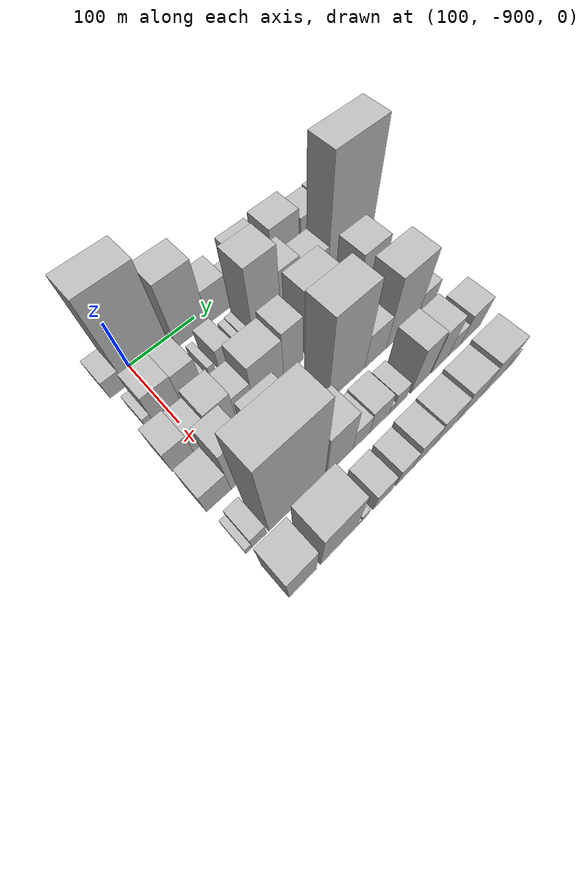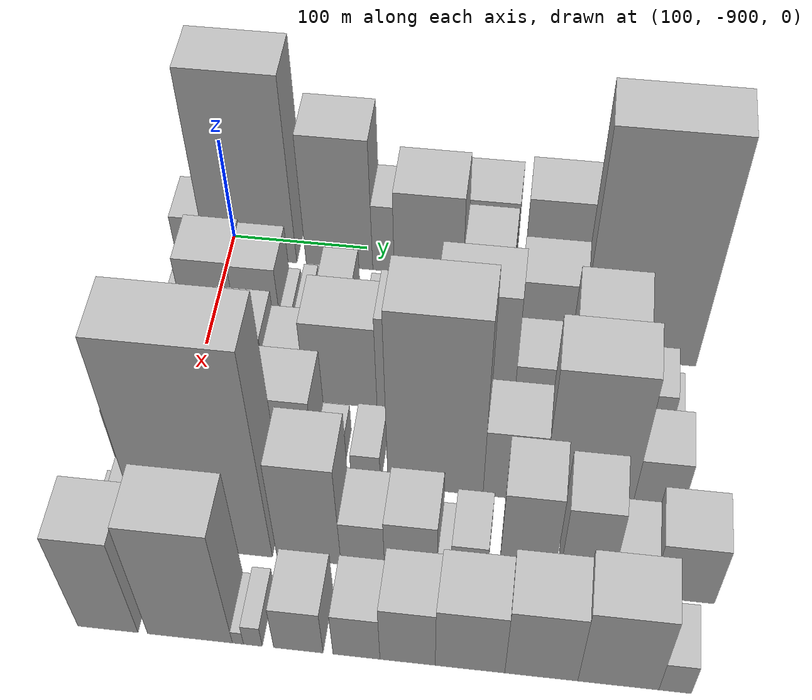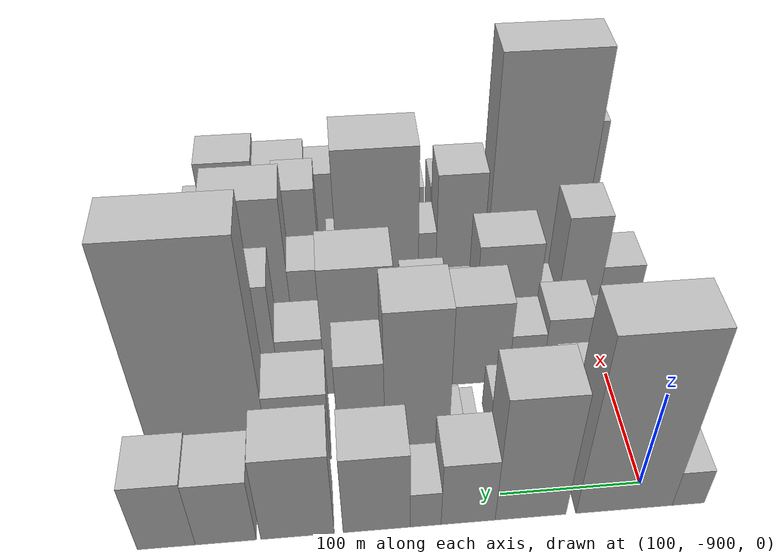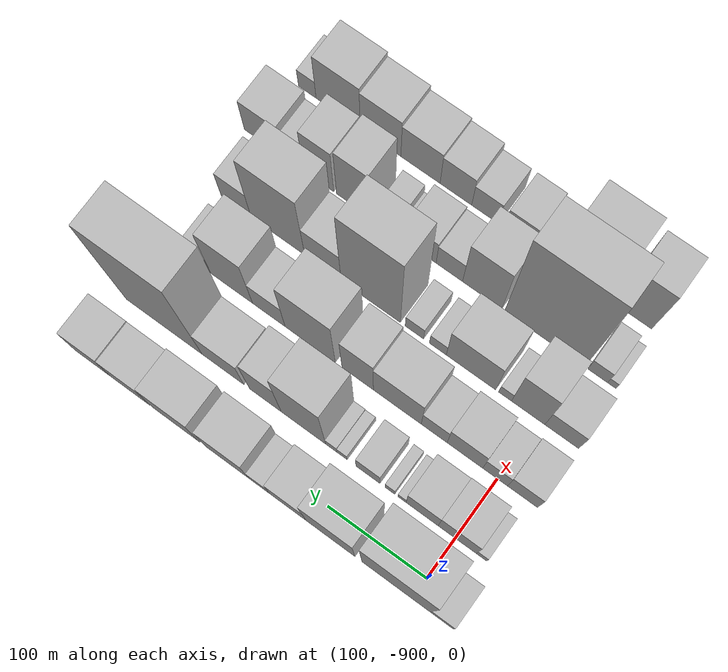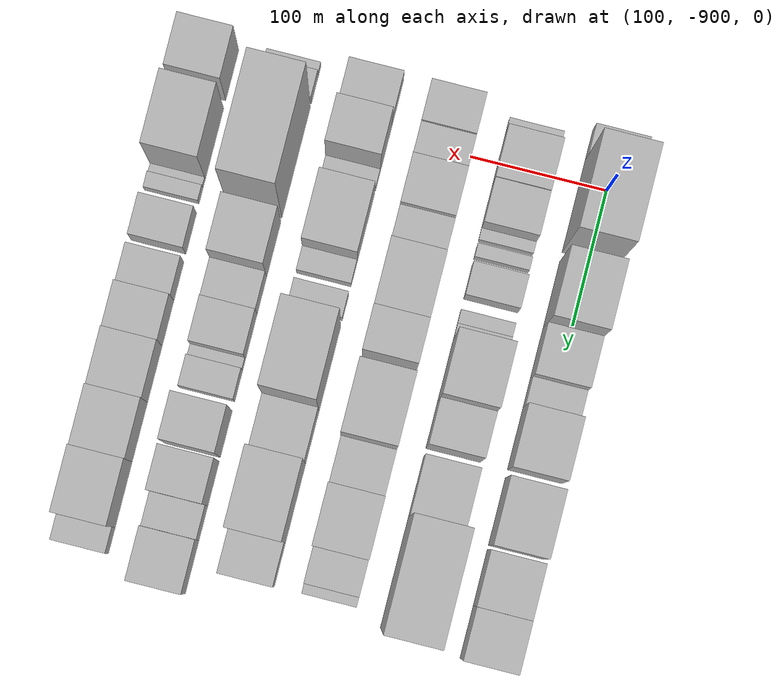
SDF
<sdf version="1.6">
 <world name="default">
  <model name="building_1">
   <static>1</static>
   <pose>100.0000 -928.5805 0 0.000000 0.000000 0.000000</pose>
   <link name="link">
    <pose>0 0 19.50 0 0 0</pose>
    <collision name="collision"><geometry><box><size>40.0000 22.8391 39.0000</size></box></geometry></collision>
    <visual name="visual">
     <cast_shadows>0</cast_shadows>
     <geometry><box><size>40.0000 22.8391 39.0000</size></box></geometry>
     <material>
      <script>
       <uri>model://HANNAS_wall/materials/scripts</uri>
       <uri>model://HANNAS_wall/materials/textures</uri>
       <name>vrc/HANNAS_wall</name>
      </script>
     </material>
    </visual>
   </link>
  </model>
  <model name="building_2">
   <static>1</static>
   <pose>100.0000 -883.2201 0 0.000000 0.000000 0.000000</pose>
   <link name="link">
    <pose>0 0 91.50 0 0 0</pose>
    <collision name="collision"><geometry><box><size>40.0000 67.8817 183.0000</size></box></geometry></collision>
    <visual name="visual">
     <cast_shadows>0</cast_shadows>
     <geometry><box><size>40.0000 67.8817 183.0000</size></box></geometry>
     <material>
      <script>
       <uri>model://HANNAS_wall/materials/scripts</uri>
       <uri>model://HANNAS_wall/materials/textures</uri>
       <name>vrc/HANNAS_wall</name>
      </script>
     </material>
    </visual>
   </link>
  </model>
  <model name="building_3">
   <static>1</static>
   <pose>100.0000 -817.6146 0 0.000000 0.000000 0.000000</pose>
   <link name="link">
    <pose>0 0 66.00 0 0 0</pose>
    <collision name="collision"><geometry><box><size>40.0000 49.3291 132.0000</size></box></geometry></collision>
    <visual name="visual">
     <cast_shadows>0</cast_shadows>
     <geometry><box><size>40.0000 49.3291 132.0000</size></box></geometry>
     <material>
      <script>
       <uri>model://HANNAS_wall/materials/scripts</uri>
       <uri>model://HANNAS_wall/materials/textures</uri>
       <name>vrc/HANNAS_wall</name>
      </script>
     </material>
    </visual>
   </link>
  </model>
  <model name="building_4">
   <static>1</static>
   <pose>100.0000 -774.3493 0 0.000000 0.000000 0.000000</pose>
   <link name="link">
    <pose>0 0 34.50 0 0 0</pose>
    <collision name="collision"><geometry><box><size>40.0000 37.2015 69.0000</size></box></geometry></collision>
    <visual name="visual">
     <cast_shadows>0</cast_shadows>
     <geometry><box><size>40.0000 37.2015 69.0000</size></box></geometry>
     <material>
      <script>
       <uri>model://HANNAS_wall/materials/scripts</uri>
       <uri>model://HANNAS_wall/materials/textures</uri>
       <name>vrc/HANNAS_wall</name>
      </script>
     </material>
    </visual>
   </link>
  </model>
  <model name="building_5">
   <static>1</static>
   <pose>100.0000 -745.1743 0 0.000000 0.000000 0.000000</pose>
   <link name="link">
    <pose>0 0 19.50 0 0 0</pose>
    <collision name="collision"><geometry><box><size>40.0000 21.1486 39.0000</size></box></geometry></collision>
    <visual name="visual">
     <cast_shadows>0</cast_shadows>
     <geometry><box><size>40.0000 21.1486 39.0000</size></box></geometry>
     <material>
      <script>
       <uri>model://HANNAS_wall/materials/scripts</uri>
       <uri>model://HANNAS_wall/materials/textures</uri>
       <name>vrc/HANNAS_wall</name>
      </script>
     </material>
    </visual>
   </link>
  </model>
  <model name="building_6">
   <static>1</static>
   <pose>100.0000 -711.8089 0 0.000000 0.000000 0.000000</pose>
   <link name="link">
    <pose>0 0 42.00 0 0 0</pose>
    <collision name="collision"><geometry><box><size>40.0000 45.5821 84.0000</size></box></geometry></collision>
    <visual name="visual">
     <cast_shadows>0</cast_shadows>
     <geometry><box><size>40.0000 45.5821 84.0000</size></box></geometry>
     <material>
      <script>
       <uri>model://HANNAS_wall/materials/scripts</uri>
       <uri>model://HANNAS_wall/materials/textures</uri>
       <name>vrc/HANNAS_wall</name>
      </script>
     </material>
    </visual>
   </link>
  </model>
  <model name="building_7">
   <static>1</static>
   <pose>100.0000 -658.3033 0 0.000000 0.000000 0.000000</pose>
   <link name="link">
    <pose>0 0 45.00 0 0 0</pose>
    <collision name="collision"><geometry><box><size>40.0000 49.4292 90.0000</size></box></geometry></collision>
    <visual name="visual">
     <cast_shadows>0</cast_shadows>
     <geometry><box><size>40.0000 49.4292 90.0000</size></box></geometry>
     <material>
      <script>
       <uri>model://HANNAS_wall/materials/scripts</uri>
       <uri>model://HANNAS_wall/materials/textures</uri>
       <name>vrc/HANNAS_wall</name>
      </script>
     </material>
    </visual>
   </link>
  </model>
  <model name="building_8">
   <static>1</static>
   <pose>100.0000 -610.2642 0 0.000000 0.000000 0.000000</pose>
   <link name="link">
    <pose>0 0 34.50 0 0 0</pose>
    <collision name="collision"><geometry><box><size>40.0000 40.6489 69.0000</size></box></geometry></collision>
    <visual name="visual">
     <cast_shadows>0</cast_shadows>
     <geometry><box><size>40.0000 40.6489 69.0000</size></box></geometry>
     <material>
      <script>
       <uri>model://HANNAS_wall/materials/scripts</uri>
       <uri>model://HANNAS_wall/materials/textures</uri>
       <name>vrc/HANNAS_wall</name>
      </script>
     </material>
    </visual>
   </link>
  </model>
  <model name="building_9">
   <static>1</static>
   <pose>100.0000 -570.7548 0 0.000000 0.000000 0.000000</pose>
   <link name="link">
    <pose>0 0 36.00 0 0 0</pose>
    <collision name="collision"><geometry><box><size>40.0000 38.3700 72.0000</size></box></geometry></collision>
    <visual name="visual">
     <cast_shadows>0</cast_shadows>
     <geometry><box><size>40.0000 38.3700 72.0000</size></box></geometry>
     <material>
      <script>
       <uri>model://HANNAS_wall/materials/scripts</uri>
       <uri>model://HANNAS_wall/materials/textures</uri>
       <name>vrc/HANNAS_wall</name>
      </script>
     </material>
    </visual>
   </link>
  </model>
  <model name="building_51">
   <static>1</static>
   <pose>160.0000 -925.8647 0 0.000000 0.000000 0.000000</pose>
   <link name="link">
    <pose>0 0 12.00 0 0 0</pose>
    <collision name="collision"><geometry><box><size>40.0000 10.2706 24.0000</size></box></geometry></collision>
    <visual name="visual">
     <cast_shadows>0</cast_shadows>
     <geometry><box><size>40.0000 10.2706 24.0000</size></box></geometry>
     <material>
      <script>
       <uri>model://HANNAS_wall/materials/scripts</uri>
       <uri>model://HANNAS_wall/materials/textures</uri>
       <name>vrc/HANNAS_wall</name>
      </script>
     </material>
    </visual>
   </link>
  </model>
  <model name="building_52">
   <static>1</static>
   <pose>160.0000 -901.6727 0 0.000000 0.000000 0.000000</pose>
   <link name="link">
    <pose>0 0 33.00 0 0 0</pose>
    <collision name="collision"><geometry><box><size>40.0000 38.1135 66.0000</size></box></geometry></collision>
    <visual name="visual">
     <cast_shadows>0</cast_shadows>
     <geometry><box><size>40.0000 38.1135 66.0000</size></box></geometry>
     <material>
      <script>
       <uri>model://HANNAS_wall/materials/scripts</uri>
       <uri>model://HANNAS_wall/materials/textures</uri>
       <name>vrc/HANNAS_wall</name>
      </script>
     </material>
    </visual>
   </link>
  </model>
  <model name="building_53">
   <static>1</static>
   <pose>160.0000 -866.5047 0 0.000000 0.000000 0.000000</pose>
   <link name="link">
    <pose>0 0 31.50 0 0 0</pose>
    <collision name="collision"><geometry><box><size>40.0000 32.2225 63.0000</size></box></geometry></collision>
    <visual name="visual">
     <cast_shadows>0</cast_shadows>
     <geometry><box><size>40.0000 32.2225 63.0000</size></box></geometry>
     <material>
      <script>
       <uri>model://HANNAS_wall/materials/scripts</uri>
       <uri>model://HANNAS_wall/materials/textures</uri>
       <name>vrc/HANNAS_wall</name>
      </script>
     </material>
    </visual>
   </link>
  </model>
  <model name="building_54">
   <static>1</static>
   <pose>160.0000 -846.1203 0 0.000000 0.000000 0.000000</pose>
   <link name="link">
    <pose>0 0 9.00 0 0 0</pose>
    <collision name="collision"><geometry><box><size>40.0000 8.5462 18.0000</size></box></geometry></collision>
    <visual name="visual">
     <cast_shadows>0</cast_shadows>
     <geometry><box><size>40.0000 8.5462 18.0000</size></box></geometry>
     <material>
      <script>
       <uri>model://HANNAS_wall/materials/scripts</uri>
       <uri>model://HANNAS_wall/materials/textures</uri>
       <name>vrc/HANNAS_wall</name>
      </script>
     </material>
    </visual>
   </link>
  </model>
  <model name="building_55">
   <static>1</static>
   <pose>160.0000 -833.8532 0 0.000000 0.000000 0.000000</pose>
   <link name="link">
    <pose>0 0 12.00 0 0 0</pose>
    <collision name="collision"><geometry><box><size>40.0000 9.9879 24.0000</size></box></geometry></collision>
    <visual name="visual">
     <cast_shadows>0</cast_shadows>
     <geometry><box><size>40.0000 9.9879 24.0000</size></box></geometry>
     <material>
      <script>
       <uri>model://HANNAS_wall/materials/scripts</uri>
       <uri>model://HANNAS_wall/materials/textures</uri>
       <name>vrc/HANNAS_wall</name>
      </script>
     </material>
    </visual>
   </link>
  </model>
  <model name="building_56">
   <static>1</static>
   <pose>160.0000 -811.6302 0 0.000000 0.000000 0.000000</pose>
   <link name="link">
    <pose>0 0 22.50 0 0 0</pose>
    <collision name="collision"><geometry><box><size>40.0000 24.4582 45.0000</size></box></geometry></collision>
    <visual name="visual">
     <cast_shadows>0</cast_shadows>
     <geometry><box><size>40.0000 24.4582 45.0000</size></box></geometry>
     <material>
      <script>
       <uri>model://HANNAS_wall/materials/scripts</uri>
       <uri>model://HANNAS_wall/materials/textures</uri>
       <name>vrc/HANNAS_wall</name>
      </script>
     </material>
    </visual>
   </link>
  </model>
  <model name="building_57">
   <static>1</static>
   <pose>160.0000 -785.2358 0 0.000000 0.000000 0.000000</pose>
   <link name="link">
    <pose>0 0 10.50 0 0 0</pose>
    <collision name="collision"><geometry><box><size>40.0000 10.3304 21.0000</size></box></geometry></collision>
    <visual name="visual">
     <cast_shadows>0</cast_shadows>
     <geometry><box><size>40.0000 10.3304 21.0000</size></box></geometry>
     <material>
      <script>
       <uri>model://HANNAS_wall/materials/scripts</uri>
       <uri>model://HANNAS_wall/materials/textures</uri>
       <name>vrc/HANNAS_wall</name>
      </script>
     </material>
    </visual>
   </link>
  </model>
  <model name="building_58">
   <static>1</static>
   <pose>160.0000 -774.2130 0 0.000000 0.000000 0.000000</pose>
   <link name="link">
    <pose>0 0 12.00 0 0 0</pose>
    <collision name="collision"><geometry><box><size>40.0000 11.7152 24.0000</size></box></geometry></collision>
    <visual name="visual">
     <cast_shadows>0</cast_shadows>
     <geometry><box><size>40.0000 11.7152 24.0000</size></box></geometry>
     <material>
      <script>
       <uri>model://HANNAS_wall/materials/scripts</uri>
       <uri>model://HANNAS_wall/materials/textures</uri>
       <name>vrc/HANNAS_wall</name>
      </script>
     </material>
    </visual>
   </link>
  </model>
  <model name="building_59">
   <static>1</static>
   <pose>160.0000 -745.3790 0 0.000000 0.000000 0.000000</pose>
   <link name="link">
    <pose>0 0 75.00 0 0 0</pose>
    <collision name="collision"><geometry><box><size>40.0000 45.9529 150.0000</size></box></geometry></collision>
    <visual name="visual">
     <cast_shadows>0</cast_shadows>
     <geometry><box><size>40.0000 45.9529 150.0000</size></box></geometry>
     <material>
      <script>
       <uri>model://HANNAS_wall/materials/scripts</uri>
       <uri>model://HANNAS_wall/materials/textures</uri>
       <name>vrc/HANNAS_wall</name>
      </script>
     </material>
    </visual>
   </link>
  </model>
  <model name="building_60">
   <static>1</static>
   <pose>160.0000 -705.8684 0 0.000000 0.000000 0.000000</pose>
   <link name="link">
    <pose>0 0 51.00 0 0 0</pose>
    <collision name="collision"><geometry><box><size>40.0000 33.0682 102.0000</size></box></geometry></collision>
    <visual name="visual">
     <cast_shadows>0</cast_shadows>
     <geometry><box><size>40.0000 33.0682 102.0000</size></box></geometry>
     <material>
      <script>
       <uri>model://HANNAS_wall/materials/scripts</uri>
       <uri>model://HANNAS_wall/materials/textures</uri>
       <name>vrc/HANNAS_wall</name>
      </script>
     </material>
    </visual>
   </link>
  </model>
  <model name="building_61">
   <static>1</static>
   <pose>160.0000 -661.4337 0 0.000000 0.000000 0.000000</pose>
   <link name="link">
    <pose>0 0 37.50 0 0 0</pose>
    <collision name="collision"><geometry><box><size>40.0000 43.8013 75.0000</size></box></geometry></collision>
    <visual name="visual">
     <cast_shadows>0</cast_shadows>
     <geometry><box><size>40.0000 43.8013 75.0000</size></box></geometry>
     <material>
      <script>
       <uri>model://HANNAS_wall/materials/scripts</uri>
       <uri>model://HANNAS_wall/materials/textures</uri>
       <name>vrc/HANNAS_wall</name>
      </script>
     </material>
    </visual>
   </link>
  </model>
  <model name="building_62">
   <static>1</static>
   <pose>160.0000 -598.9825 0 0.000000 0.000000 0.000000</pose>
   <link name="link">
    <pose>0 0 111.00 0 0 0</pose>
    <collision name="collision"><geometry><box><size>40.0000 81.1011 222.0000</size></box></geometry></collision>
    <visual name="visual">
     <cast_shadows>0</cast_shadows>
     <geometry><box><size>40.0000 81.1011 222.0000</size></box></geometry>
     <material>
      <script>
       <uri>model://HANNAS_wall/materials/scripts</uri>
       <uri>model://HANNAS_wall/materials/textures</uri>
       <name>vrc/HANNAS_wall</name>
      </script>
     </material>
    </visual>
   </link>
  </model>
  <model name="building_105">
   <static>1</static>
   <pose>220.0000 -924.9800 0 0.000000 0.000000 0.000000</pose>
   <link name="link">
    <pose>0 0 27.00 0 0 0</pose>
    <collision name="collision"><geometry><box><size>40.0000 30.0400 54.0000</size></box></geometry></collision>
    <visual name="visual">
     <cast_shadows>0</cast_shadows>
     <geometry><box><size>40.0000 30.0400 54.0000</size></box></geometry>
     <material>
      <script>
       <uri>model://HANNAS_wall/materials/scripts</uri>
       <uri>model://HANNAS_wall/materials/textures</uri>
       <name>vrc/HANNAS_wall</name>
      </script>
     </material>
    </visual>
   </link>
  </model>
  <model name="building_106">
   <static>1</static>
   <pose>220.0000 -897.5039 0 0.000000 0.000000 0.000000</pose>
   <link name="link">
    <pose>0 0 24.00 0 0 0</pose>
    <collision name="collision"><geometry><box><size>40.0000 24.9122 48.0000</size></box></geometry></collision>
    <visual name="visual">
     <cast_shadows>0</cast_shadows>
     <geometry><box><size>40.0000 24.9122 48.0000</size></box></geometry>
     <material>
      <script>
       <uri>model://HANNAS_wall/materials/scripts</uri>
       <uri>model://HANNAS_wall/materials/textures</uri>
       <name>vrc/HANNAS_wall</name>
      </script>
     </material>
    </visual>
   </link>
  </model>
  <model name="building_107">
   <static>1</static>
   <pose>220.0000 -867.0587 0 0.000000 0.000000 0.000000</pose>
   <link name="link">
    <pose>0 0 33.00 0 0 0</pose>
    <collision name="collision"><geometry><box><size>40.0000 35.9781 66.0000</size></box></geometry></collision>
    <visual name="visual">
     <cast_shadows>0</cast_shadows>
     <geometry><box><size>40.0000 35.9781 66.0000</size></box></geometry>
     <material>
      <script>
       <uri>model://HANNAS_wall/materials/scripts</uri>
       <uri>model://HANNAS_wall/materials/textures</uri>
       <name>vrc/HANNAS_wall</name>
      </script>
     </material>
    </visual>
   </link>
  </model>
  <model name="building_108">
   <static>1</static>
   <pose>220.0000 -835.8420 0 0.000000 0.000000 0.000000</pose>
   <link name="link">
    <pose>0 0 25.50 0 0 0</pose>
    <collision name="collision"><geometry><box><size>40.0000 26.4553 51.0000</size></box></geometry></collision>
    <visual name="visual">
     <cast_shadows>0</cast_shadows>
     <geometry><box><size>40.0000 26.4553 51.0000</size></box></geometry>
     <material>
      <script>
       <uri>model://HANNAS_wall/materials/scripts</uri>
       <uri>model://HANNAS_wall/materials/textures</uri>
       <name>vrc/HANNAS_wall</name>
      </script>
     </material>
    </visual>
   </link>
  </model>
  <model name="building_109">
   <static>1</static>
   <pose>220.0000 -798.0347 0 0.000000 0.000000 0.000000</pose>
   <link name="link">
    <pose>0 0 43.50 0 0 0</pose>
    <collision name="collision"><geometry><box><size>40.0000 49.1594 87.0000</size></box></geometry></collision>
    <visual name="visual">
     <cast_shadows>0</cast_shadows>
     <geometry><box><size>40.0000 49.1594 87.0000</size></box></geometry>
     <material>
      <script>
       <uri>model://HANNAS_wall/materials/scripts</uri>
       <uri>model://HANNAS_wall/materials/textures</uri>
       <name>vrc/HANNAS_wall</name>
      </script>
     </material>
    </visual>
   </link>
  </model>
  <model name="building_110">
   <static>1</static>
   <pose>220.0000 -757.2284 0 0.000000 0.000000 0.000000</pose>
   <link name="link">
    <pose>0 0 49.50 0 0 0</pose>
    <collision name="collision"><geometry><box><size>40.0000 32.4532 99.0000</size></box></geometry></collision>
    <visual name="visual">
     <cast_shadows>0</cast_shadows>
     <geometry><box><size>40.0000 32.4532 99.0000</size></box></geometry>
     <material>
      <script>
       <uri>model://HANNAS_wall/materials/scripts</uri>
       <uri>model://HANNAS_wall/materials/textures</uri>
       <name>vrc/HANNAS_wall</name>
      </script>
     </material>
    </visual>
   </link>
  </model>
  <model name="building_111">
   <static>1</static>
   <pose>220.0000 -707.7387 0 0.000000 0.000000 0.000000</pose>
   <link name="link">
    <pose>0 0 66.00 0 0 0</pose>
    <collision name="collision"><geometry><box><size>40.0000 52.5260 132.0000</size></box></geometry></collision>
    <visual name="visual">
     <cast_shadows>0</cast_shadows>
     <geometry><box><size>40.0000 52.5260 132.0000</size></box></geometry>
     <material>
      <script>
       <uri>model://HANNAS_wall/materials/scripts</uri>
       <uri>model://HANNAS_wall/materials/textures</uri>
       <name>vrc/HANNAS_wall</name>
      </script>
     </material>
    </visual>
   </link>
  </model>
  <model name="building_112">
   <static>1</static>
   <pose>220.0000 -664.3202 0 0.000000 0.000000 0.000000</pose>
   <link name="link">
    <pose>0 0 31.50 0 0 0</pose>
    <collision name="collision"><geometry><box><size>40.0000 34.3111 63.0000</size></box></geometry></collision>
    <visual name="visual">
     <cast_shadows>0</cast_shadows>
     <geometry><box><size>40.0000 34.3111 63.0000</size></box></geometry>
     <material>
      <script>
       <uri>model://HANNAS_wall/materials/scripts</uri>
       <uri>model://HANNAS_wall/materials/textures</uri>
       <name>vrc/HANNAS_wall</name>
      </script>
     </material>
    </visual>
   </link>
  </model>
  <model name="building_113">
   <static>1</static>
   <pose>220.0000 -624.8797 0 0.000000 0.000000 0.000000</pose>
   <link name="link">
    <pose>0 0 60.00 0 0 0</pose>
    <collision name="collision"><geometry><box><size>40.0000 44.5698 120.0000</size></box></geometry></collision>
    <visual name="visual">
     <cast_shadows>0</cast_shadows>
     <geometry><box><size>40.0000 44.5698 120.0000</size></box></geometry>
     <material>
      <script>
       <uri>model://HANNAS_wall/materials/scripts</uri>
       <uri>model://HANNAS_wall/materials/textures</uri>
       <name>vrc/HANNAS_wall</name>
      </script>
     </material>
    </visual>
   </link>
  </model>
  <model name="building_114">
   <static>1</static>
   <pose>220.0000 -589.1715 0 0.000000 0.000000 0.000000</pose>
   <link name="link">
    <pose>0 0 22.50 0 0 0</pose>
    <collision name="collision"><geometry><box><size>40.0000 26.8466 45.0000</size></box></geometry></collision>
    <visual name="visual">
     <cast_shadows>0</cast_shadows>
     <geometry><box><size>40.0000 26.8466 45.0000</size></box></geometry>
     <material>
      <script>
       <uri>model://HANNAS_wall/materials/scripts</uri>
       <uri>model://HANNAS_wall/materials/textures</uri>
       <name>vrc/HANNAS_wall</name>
      </script>
     </material>
    </visual>
   </link>
  </model>
  <model name="building_115">
   <static>1</static>
   <pose>220.0000 -571.9809 0 0.000000 0.000000 0.000000</pose>
   <link name="link">
    <pose>0 0 9.00 0 0 0</pose>
    <collision name="collision"><geometry><box><size>40.0000 7.5346 18.0000</size></box></geometry></collision>
    <visual name="visual">
     <cast_shadows>0</cast_shadows>
     <geometry><box><size>40.0000 7.5346 18.0000</size></box></geometry>
     <material>
      <script>
       <uri>model://HANNAS_wall/materials/scripts</uri>
       <uri>model://HANNAS_wall/materials/textures</uri>
       <name>vrc/HANNAS_wall</name>
      </script>
     </material>
    </visual>
   </link>
  </model>
  <model name="building_162">
   <static>1</static>
   <pose>280.0000 -922.9904 0 0.000000 0.000000 0.000000</pose>
   <link name="link">
    <pose>0 0 28.50 0 0 0</pose>
    <collision name="collision"><geometry><box><size>40.0000 34.0192 57.0000</size></box></geometry></collision>
    <visual name="visual">
     <cast_shadows>0</cast_shadows>
     <geometry><box><size>40.0000 34.0192 57.0000</size></box></geometry>
     <material>
      <script>
       <uri>model://HANNAS_wall/materials/scripts</uri>
       <uri>model://HANNAS_wall/materials/textures</uri>
       <name>vrc/HANNAS_wall</name>
      </script>
     </material>
    </visual>
   </link>
  </model>
  <model name="building_163">
   <static>1</static>
   <pose>280.0000 -889.1143 0 0.000000 0.000000 0.000000</pose>
   <link name="link">
    <pose>0 0 55.50 0 0 0</pose>
    <collision name="collision"><geometry><box><size>40.0000 33.7330 111.0000</size></box></geometry></collision>
    <visual name="visual">
     <cast_shadows>0</cast_shadows>
     <geometry><box><size>40.0000 33.7330 111.0000</size></box></geometry>
     <material>
      <script>
       <uri>model://HANNAS_wall/materials/scripts</uri>
       <uri>model://HANNAS_wall/materials/textures</uri>
       <name>vrc/HANNAS_wall</name>
      </script>
     </material>
    </visual>
   </link>
  </model>
  <model name="building_164">
   <static>1</static>
   <pose>280.0000 -865.7031 0 0.000000 0.000000 0.000000</pose>
   <link name="link">
    <pose>0 0 13.50 0 0 0</pose>
    <collision name="collision"><geometry><box><size>40.0000 13.0894 27.0000</size></box></geometry></collision>
    <visual name="visual">
     <cast_shadows>0</cast_shadows>
     <geometry><box><size>40.0000 13.0894 27.0000</size></box></geometry>
     <material>
      <script>
       <uri>model://HANNAS_wall/materials/scripts</uri>
       <uri>model://HANNAS_wall/materials/textures</uri>
       <name>vrc/HANNAS_wall</name>
      </script>
     </material>
    </visual>
   </link>
  </model>
  <model name="building_165">
   <static>1</static>
   <pose>280.0000 -830.9069 0 0.000000 0.000000 0.000000</pose>
   <link name="link">
    <pose>0 0 43.50 0 0 0</pose>
    <collision name="collision"><geometry><box><size>40.0000 50.5030 87.0000</size></box></geometry></collision>
    <visual name="visual">
     <cast_shadows>0</cast_shadows>
     <geometry><box><size>40.0000 50.5030 87.0000</size></box></geometry>
     <material>
      <script>
       <uri>model://HANNAS_wall/materials/scripts</uri>
       <uri>model://HANNAS_wall/materials/textures</uri>
       <name>vrc/HANNAS_wall</name>
      </script>
     </material>
    </visual>
   </link>
  </model>
  <model name="building_166">
   <static>1</static>
   <pose>280.0000 -796.9113 0 0.000000 0.000000 0.000000</pose>
   <link name="link">
    <pose>0 0 15.00 0 0 0</pose>
    <collision name="collision"><geometry><box><size>40.0000 17.4881 30.0000</size></box></geometry></collision>
    <visual name="visual">
     <cast_shadows>0</cast_shadows>
     <geometry><box><size>40.0000 17.4881 30.0000</size></box></geometry>
     <material>
      <script>
       <uri>model://HANNAS_wall/materials/scripts</uri>
       <uri>model://HANNAS_wall/materials/textures</uri>
       <name>vrc/HANNAS_wall</name>
      </script>
     </material>
    </visual>
   </link>
  </model>
  <model name="building_167">
   <static>1</static>
   <pose>280.0000 -772.6051 0 0.000000 0.000000 0.000000</pose>
   <link name="link">
    <pose>0 0 16.50 0 0 0</pose>
    <collision name="collision"><geometry><box><size>40.0000 19.1244 33.0000</size></box></geometry></collision>
    <visual name="visual">
     <cast_shadows>0</cast_shadows>
     <geometry><box><size>40.0000 19.1244 33.0000</size></box></geometry>
     <material>
      <script>
       <uri>model://HANNAS_wall/materials/scripts</uri>
       <uri>model://HANNAS_wall/materials/textures</uri>
       <name>vrc/HANNAS_wall</name>
      </script>
     </material>
    </visual>
   </link>
  </model>
  <model name="building_168">
   <static>1</static>
   <pose>280.0000 -727.0051 0 0.000000 0.000000 0.000000</pose>
   <link name="link">
    <pose>0 0 93.00 0 0 0</pose>
    <collision name="collision"><geometry><box><size>40.0000 62.0757 186.0000</size></box></geometry></collision>
    <visual name="visual">
     <cast_shadows>0</cast_shadows>
     <geometry><box><size>40.0000 62.0757 186.0000</size></box></geometry>
     <material>
      <script>
       <uri>model://HANNAS_wall/materials/scripts</uri>
       <uri>model://HANNAS_wall/materials/textures</uri>
       <name>vrc/HANNAS_wall</name>
      </script>
     </material>
    </visual>
   </link>
  </model>
  <model name="building_169">
   <static>1</static>
   <pose>280.0000 -676.6794 0 0.000000 0.000000 0.000000</pose>
   <link name="link">
    <pose>0 0 37.50 0 0 0</pose>
    <collision name="collision"><geometry><box><size>40.0000 38.5756 75.0000</size></box></geometry></collision>
    <visual name="visual">
     <cast_shadows>0</cast_shadows>
     <geometry><box><size>40.0000 38.5756 75.0000</size></box></geometry>
     <material>
      <script>
       <uri>model://HANNAS_wall/materials/scripts</uri>
       <uri>model://HANNAS_wall/materials/textures</uri>
       <name>vrc/HANNAS_wall</name>
      </script>
     </material>
    </visual>
   </link>
  </model>
  <model name="building_170">
   <static>1</static>
   <pose>280.0000 -628.6742 0 0.000000 0.000000 0.000000</pose>
   <link name="link">
    <pose>0 0 73.50 0 0 0</pose>
    <collision name="collision"><geometry><box><size>40.0000 57.4349 147.0000</size></box></geometry></collision>
    <visual name="visual">
     <cast_shadows>0</cast_shadows>
     <geometry><box><size>40.0000 57.4349 147.0000</size></box></geometry>
     <material>
      <script>
       <uri>model://HANNAS_wall/materials/scripts</uri>
       <uri>model://HANNAS_wall/materials/textures</uri>
       <name>vrc/HANNAS_wall</name>
      </script>
     </material>
    </visual>
   </link>
  </model>
  <model name="building_171">
   <static>1</static>
   <pose>280.0000 -583.9410 0 0.000000 0.000000 0.000000</pose>
   <link name="link">
    <pose>0 0 30.00 0 0 0</pose>
    <collision name="collision"><geometry><box><size>40.0000 32.0313 60.0000</size></box></geometry></collision>
    <visual name="visual">
     <cast_shadows>0</cast_shadows>
     <geometry><box><size>40.0000 32.0313 60.0000</size></box></geometry>
     <material>
      <script>
       <uri>model://HANNAS_wall/materials/scripts</uri>
       <uri>model://HANNAS_wall/materials/textures</uri>
       <name>vrc/HANNAS_wall</name>
      </script>
     </material>
    </visual>
   </link>
  </model>
  <model name="building_216">
   <static>1</static>
   <pose>340.0000 -932.7652 0 0.000000 0.000000 0.000000</pose>
   <link name="link">
    <pose>0 0 9.00 0 0 0</pose>
    <collision name="collision"><geometry><box><size>40.0000 8.4695 18.0000</size></box></geometry></collision>
    <visual name="visual">
     <cast_shadows>0</cast_shadows>
     <geometry><box><size>40.0000 8.4695 18.0000</size></box></geometry>
     <material>
      <script>
       <uri>model://HANNAS_wall/materials/scripts</uri>
       <uri>model://HANNAS_wall/materials/textures</uri>
       <name>vrc/HANNAS_wall</name>
      </script>
     </material>
    </visual>
   </link>
  </model>
  <model name="building_217">
   <static>1</static>
   <pose>340.0000 -918.5170 0 0.000000 0.000000 0.000000</pose>
   <link name="link">
    <pose>0 0 18.00 0 0 0</pose>
    <collision name="collision"><geometry><box><size>40.0000 20.0269 36.0000</size></box></geometry></collision>
    <visual name="visual">
     <cast_shadows>0</cast_shadows>
     <geometry><box><size>40.0000 20.0269 36.0000</size></box></geometry>
     <material>
      <script>
       <uri>model://HANNAS_wall/materials/scripts</uri>
       <uri>model://HANNAS_wall/materials/textures</uri>
       <name>vrc/HANNAS_wall</name>
      </script>
     </material>
    </visual>
   </link>
  </model>
  <model name="building_218">
   <static>1</static>
   <pose>340.0000 -864.5751 0 0.000000 0.000000 0.000000</pose>
   <link name="link">
    <pose>0 0 109.50 0 0 0</pose>
    <collision name="collision"><geometry><box><size>40.0000 81.8570 219.0000</size></box></geometry></collision>
    <visual name="visual">
     <cast_shadows>0</cast_shadows>
     <geometry><box><size>40.0000 81.8570 219.0000</size></box></geometry>
     <material>
      <script>
       <uri>model://HANNAS_wall/materials/scripts</uri>
       <uri>model://HANNAS_wall/materials/textures</uri>
       <name>vrc/HANNAS_wall</name>
      </script>
     </material>
    </visual>
   </link>
  </model>
  <model name="building_219">
   <static>1</static>
   <pose>340.0000 -800.3147 0 0.000000 0.000000 0.000000</pose>
   <link name="link">
    <pose>0 0 55.50 0 0 0</pose>
    <collision name="collision"><geometry><box><size>40.0000 40.6637 111.0000</size></box></geometry></collision>
    <visual name="visual">
     <cast_shadows>0</cast_shadows>
     <geometry><box><size>40.0000 40.6637 111.0000</size></box></geometry>
     <material>
      <script>
       <uri>model://HANNAS_wall/materials/scripts</uri>
       <uri>model://HANNAS_wall/materials/textures</uri>
       <name>vrc/HANNAS_wall</name>
      </script>
     </material>
    </visual>
   </link>
  </model>
  <model name="building_220">
   <static>1</static>
   <pose>340.0000 -766.1860 0 0.000000 0.000000 0.000000</pose>
   <link name="link">
    <pose>0 0 25.50 0 0 0</pose>
    <collision name="collision"><geometry><box><size>40.0000 27.5938 51.0000</size></box></geometry></collision>
    <visual name="visual">
     <cast_shadows>0</cast_shadows>
     <geometry><box><size>40.0000 27.5938 51.0000</size></box></geometry>
     <material>
      <script>
       <uri>model://HANNAS_wall/materials/scripts</uri>
       <uri>model://HANNAS_wall/materials/textures</uri>
       <name>vrc/HANNAS_wall</name>
      </script>
     </material>
    </visual>
   </link>
  </model>
  <model name="building_221">
   <static>1</static>
   <pose>340.0000 -735.8946 0 0.000000 0.000000 0.000000</pose>
   <link name="link">
    <pose>0 0 28.50 0 0 0</pose>
    <collision name="collision"><geometry><box><size>40.0000 32.9891 57.0000</size></box></geometry></collision>
    <visual name="visual">
     <cast_shadows>0</cast_shadows>
     <geometry><box><size>40.0000 32.9891 57.0000</size></box></geometry>
     <material>
      <script>
       <uri>model://HANNAS_wall/materials/scripts</uri>
       <uri>model://HANNAS_wall/materials/textures</uri>
       <name>vrc/HANNAS_wall</name>
      </script>
     </material>
    </visual>
   </link>
  </model>
  <model name="building_222">
   <static>1</static>
   <pose>340.0000 -715.0918 0 0.000000 0.000000 0.000000</pose>
   <link name="link">
    <pose>0 0 10.50 0 0 0</pose>
    <collision name="collision"><geometry><box><size>40.0000 8.6166 21.0000</size></box></geometry></collision>
    <visual name="visual">
     <cast_shadows>0</cast_shadows>
     <geometry><box><size>40.0000 8.6166 21.0000</size></box></geometry>
     <material>
      <script>
       <uri>model://HANNAS_wall/materials/scripts</uri>
       <uri>model://HANNAS_wall/materials/textures</uri>
       <name>vrc/HANNAS_wall</name>
      </script>
     </material>
    </visual>
   </link>
  </model>
  <model name="building_223">
   <static>1</static>
   <pose>340.0000 -699.4274 0 0.000000 0.000000 0.000000</pose>
   <link name="link">
    <pose>0 0 19.50 0 0 0</pose>
    <collision name="collision"><geometry><box><size>40.0000 22.7121 39.0000</size></box></geometry></collision>
    <visual name="visual">
     <cast_shadows>0</cast_shadows>
     <geometry><box><size>40.0000 22.7121 39.0000</size></box></geometry>
     <material>
      <script>
       <uri>model://HANNAS_wall/materials/scripts</uri>
       <uri>model://HANNAS_wall/materials/textures</uri>
       <name>vrc/HANNAS_wall</name>
      </script>
     </material>
    </visual>
   </link>
  </model>
  <model name="building_224">
   <static>1</static>
   <pose>340.0000 -664.0584 0 0.000000 0.000000 0.000000</pose>
   <link name="link">
    <pose>0 0 52.50 0 0 0</pose>
    <collision name="collision"><geometry><box><size>40.0000 34.0257 105.0000</size></box></geometry></collision>
    <visual name="visual">
     <cast_shadows>0</cast_shadows>
     <geometry><box><size>40.0000 34.0257 105.0000</size></box></geometry>
     <material>
      <script>
       <uri>model://HANNAS_wall/materials/scripts</uri>
       <uri>model://HANNAS_wall/materials/textures</uri>
       <name>vrc/HANNAS_wall</name>
      </script>
     </material>
    </visual>
   </link>
  </model>
  <model name="building_225">
   <static>1</static>
   <pose>340.0000 -627.7861 0 0.000000 0.000000 0.000000</pose>
   <link name="link">
    <pose>0 0 48.00 0 0 0</pose>
    <collision name="collision"><geometry><box><size>40.0000 32.5188 96.0000</size></box></geometry></collision>
    <visual name="visual">
     <cast_shadows>0</cast_shadows>
     <geometry><box><size>40.0000 32.5188 96.0000</size></box></geometry>
     <material>
      <script>
       <uri>model://HANNAS_wall/materials/scripts</uri>
       <uri>model://HANNAS_wall/materials/textures</uri>
       <name>vrc/HANNAS_wall</name>
      </script>
     </material>
    </visual>
   </link>
  </model>
  <model name="building_226">
   <static>1</static>
   <pose>340.0000 -599.0649 0 0.000000 0.000000 0.000000</pose>
   <link name="link">
    <pose>0 0 24.00 0 0 0</pose>
    <collision name="collision"><geometry><box><size>40.0000 24.9237 48.0000</size></box></geometry></collision>
    <visual name="visual">
     <cast_shadows>0</cast_shadows>
     <geometry><box><size>40.0000 24.9237 48.0000</size></box></geometry>
     <material>
      <script>
       <uri>model://HANNAS_wall/materials/scripts</uri>
       <uri>model://HANNAS_wall/materials/textures</uri>
       <name>vrc/HANNAS_wall</name>
      </script>
     </material>
    </visual>
   </link>
  </model>
  <model name="building_227">
   <static>1</static>
   <pose>340.0000 -566.9868 0 0.000000 0.000000 0.000000</pose>
   <link name="link">
    <pose>0 0 33.00 0 0 0</pose>
    <collision name="collision"><geometry><box><size>40.0000 39.2325 66.0000</size></box></geometry></collision>
    <visual name="visual">
     <cast_shadows>0</cast_shadows>
     <geometry><box><size>40.0000 39.2325 66.0000</size></box></geometry>
     <material>
      <script>
       <uri>model://HANNAS_wall/materials/scripts</uri>
       <uri>model://HANNAS_wall/materials/textures</uri>
       <name>vrc/HANNAS_wall</name>
      </script>
     </material>
    </visual>
   </link>
  </model>
  <model name="building_274">
   <static>1</static>
   <pose>400.0000 -914.3231 0 0.000000 0.000000 0.000000</pose>
   <link name="link">
    <pose>0 0 55.50 0 0 0</pose>
    <collision name="collision"><geometry><box><size>40.0000 37.3539 111.0000</size></box></geometry></collision>
    <visual name="visual">
     <cast_shadows>0</cast_shadows>
     <geometry><box><size>40.0000 37.3539 111.0000</size></box></geometry>
     <material>
      <script>
       <uri>model://HANNAS_wall/materials/scripts</uri>
       <uri>model://HANNAS_wall/materials/textures</uri>
       <name>vrc/HANNAS_wall</name>
      </script>
     </material>
    </visual>
   </link>
  </model>
  <model name="building_275">
   <static>1</static>
   <pose>400.0000 -863.4669 0 0.000000 0.000000 0.000000</pose>
   <link name="link">
    <pose>0 0 66.00 0 0 0</pose>
    <collision name="collision"><geometry><box><size>40.0000 52.3585 132.0000</size></box></geometry></collision>
    <visual name="visual">
     <cast_shadows>0</cast_shadows>
     <geometry><box><size>40.0000 52.3585 132.0000</size></box></geometry>
     <material>
      <script>
       <uri>model://HANNAS_wall/materials/scripts</uri>
       <uri>model://HANNAS_wall/materials/textures</uri>
       <name>vrc/HANNAS_wall</name>
      </script>
     </material>
    </visual>
   </link>
  </model>
  <model name="building_276">
   <static>1</static>
   <pose>400.0000 -833.8877 0 0.000000 0.000000 0.000000</pose>
   <link name="link">
    <pose>0 0 7.50 0 0 0</pose>
    <collision name="collision"><geometry><box><size>40.0000 6.7997 15.0000</size></box></geometry></collision>
    <visual name="visual">
     <cast_shadows>0</cast_shadows>
     <geometry><box><size>40.0000 6.7997 15.0000</size></box></geometry>
     <material>
      <script>
       <uri>model://HANNAS_wall/materials/scripts</uri>
       <uri>model://HANNAS_wall/materials/textures</uri>
       <name>vrc/HANNAS_wall</name>
      </script>
     </material>
    </visual>
   </link>
  </model>
  <model name="building_277">
   <static>1</static>
   <pose>400.0000 -824.7146 0 0.000000 0.000000 0.000000</pose>
   <link name="link">
    <pose>0 0 12.00 0 0 0</pose>
    <collision name="collision"><geometry><box><size>40.0000 11.5465 24.0000</size></box></geometry></collision>
    <visual name="visual">
     <cast_shadows>0</cast_shadows>
     <geometry><box><size>40.0000 11.5465 24.0000</size></box></geometry>
     <material>
      <script>
       <uri>model://HANNAS_wall/materials/scripts</uri>
       <uri>model://HANNAS_wall/materials/textures</uri>
       <name>vrc/HANNAS_wall</name>
      </script>
     </material>
    </visual>
   </link>
  </model>
  <model name="building_278">
   <static>1</static>
   <pose>400.0000 -796.8330 0 0.000000 0.000000 0.000000</pose>
   <link name="link">
    <pose>0 0 25.50 0 0 0</pose>
    <collision name="collision"><geometry><box><size>40.0000 30.2169 51.0000</size></box></geometry></collision>
    <visual name="visual">
     <cast_shadows>0</cast_shadows>
     <geometry><box><size>40.0000 30.2169 51.0000</size></box></geometry>
     <material>
      <script>
       <uri>model://HANNAS_wall/materials/scripts</uri>
       <uri>model://HANNAS_wall/materials/textures</uri>
       <name>vrc/HANNAS_wall</name>
      </script>
     </material>
    </visual>
   </link>
  </model>
  <model name="building_279">
   <static>1</static>
   <pose>400.0000 -761.4822 0 0.000000 0.000000 0.000000</pose>
   <link name="link">
    <pose>0 0 25.50 0 0 0</pose>
    <collision name="collision"><geometry><box><size>40.0000 28.4846 51.0000</size></box></geometry></collision>
    <visual name="visual">
     <cast_shadows>0</cast_shadows>
     <geometry><box><size>40.0000 28.4846 51.0000</size></box></geometry>
     <material>
      <script>
       <uri>model://HANNAS_wall/materials/scripts</uri>
       <uri>model://HANNAS_wall/materials/textures</uri>
       <name>vrc/HANNAS_wall</name>
      </script>
     </material>
    </visual>
   </link>
  </model>
  <model name="building_280">
   <static>1</static>
   <pose>400.0000 -730.5452 0 0.000000 0.000000 0.000000</pose>
   <link name="link">
    <pose>0 0 33.00 0 0 0</pose>
    <collision name="collision"><geometry><box><size>40.0000 33.3896 66.0000</size></box></geometry></collision>
    <visual name="visual">
     <cast_shadows>0</cast_shadows>
     <geometry><box><size>40.0000 33.3896 66.0000</size></box></geometry>
     <material>
      <script>
       <uri>model://HANNAS_wall/materials/scripts</uri>
       <uri>model://HANNAS_wall/materials/textures</uri>
       <name>vrc/HANNAS_wall</name>
      </script>
     </material>
    </visual>
   </link>
  </model>
  <model name="building_281">
   <static>1</static>
   <pose>400.0000 -692.9825 0 0.000000 0.000000 0.000000</pose>
   <link name="link">
    <pose>0 0 36.00 0 0 0</pose>
    <collision name="collision"><geometry><box><size>40.0000 41.7358 72.0000</size></box></geometry></collision>
    <visual name="visual">
     <cast_shadows>0</cast_shadows>
     <geometry><box><size>40.0000 41.7358 72.0000</size></box></geometry>
     <material>
      <script>
       <uri>model://HANNAS_wall/materials/scripts</uri>
       <uri>model://HANNAS_wall/materials/textures</uri>
       <name>vrc/HANNAS_wall</name>
      </script>
     </material>
    </visual>
   </link>
  </model>
  <model name="building_282">
   <static>1</static>
   <pose>400.0000 -650.3402 0 0.000000 0.000000 0.000000</pose>
   <link name="link">
    <pose>0 0 40.50 0 0 0</pose>
    <collision name="collision"><geometry><box><size>40.0000 43.5487 81.0000</size></box></geometry></collision>
    <visual name="visual">
     <cast_shadows>0</cast_shadows>
     <geometry><box><size>40.0000 43.5487 81.0000</size></box></geometry>
     <material>
      <script>
       <uri>model://HANNAS_wall/materials/scripts</uri>
       <uri>model://HANNAS_wall/materials/textures</uri>
       <name>vrc/HANNAS_wall</name>
      </script>
     </material>
    </visual>
   </link>
  </model>
  <model name="building_283">
   <static>1</static>
   <pose>400.0000 -604.5937 0 0.000000 0.000000 0.000000</pose>
   <link name="link">
    <pose>0 0 45.00 0 0 0</pose>
    <collision name="collision"><geometry><box><size>40.0000 47.9443 90.0000</size></box></geometry></collision>
    <visual name="visual">
     <cast_shadows>0</cast_shadows>
     <geometry><box><size>40.0000 47.9443 90.0000</size></box></geometry>
     <material>
      <script>
       <uri>model://HANNAS_wall/materials/scripts</uri>
       <uri>model://HANNAS_wall/materials/textures</uri>
       <name>vrc/HANNAS_wall</name>
      </script>
     </material>
    </visual>
   </link>
  </model>
  <model name="building_284">
   <static>1</static>
   <pose>400.0000 -571.0384 0 0.000000 0.000000 0.000000</pose>
   <link name="link">
    <pose>0 0 18.00 0 0 0</pose>
    <collision name="collision"><geometry><box><size>40.0000 19.1664 36.0000</size></box></geometry></collision>
    <visual name="visual">
     <cast_shadows>0</cast_shadows>
     <geometry><box><size>40.0000 19.1664 36.0000</size></box></geometry>
     <material>
      <script>
       <uri>model://HANNAS_wall/materials/scripts</uri>
       <uri>model://HANNAS_wall/materials/textures</uri>
       <name>vrc/HANNAS_wall</name>
      </script>
     </material>
    </visual>
   </link>
  </model>
 </world>
</sdf>
